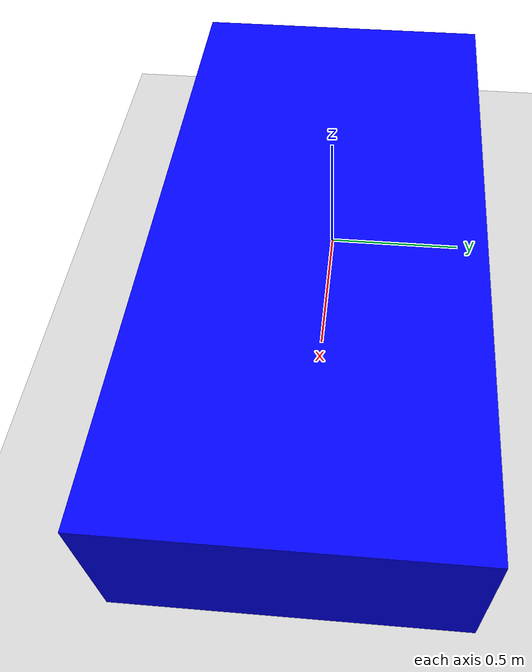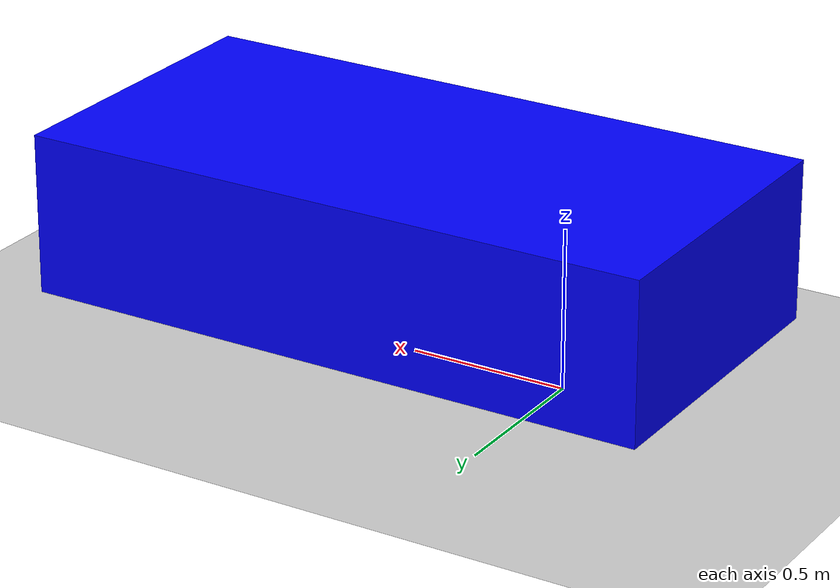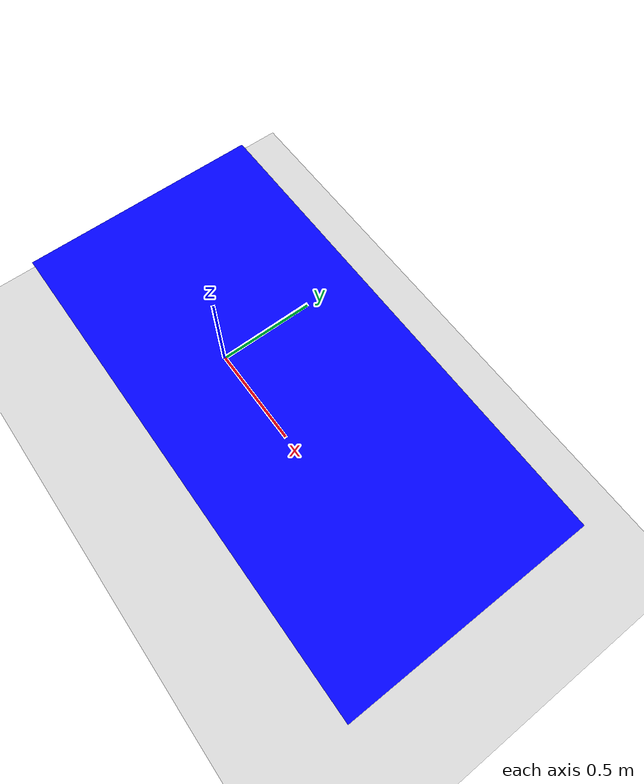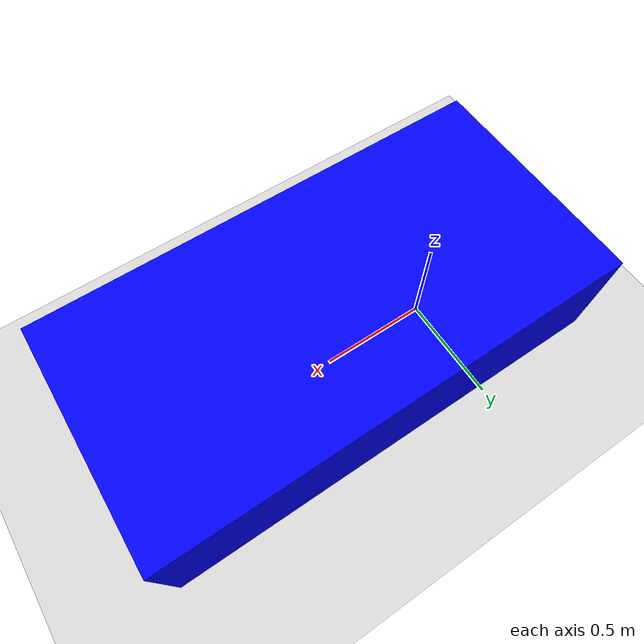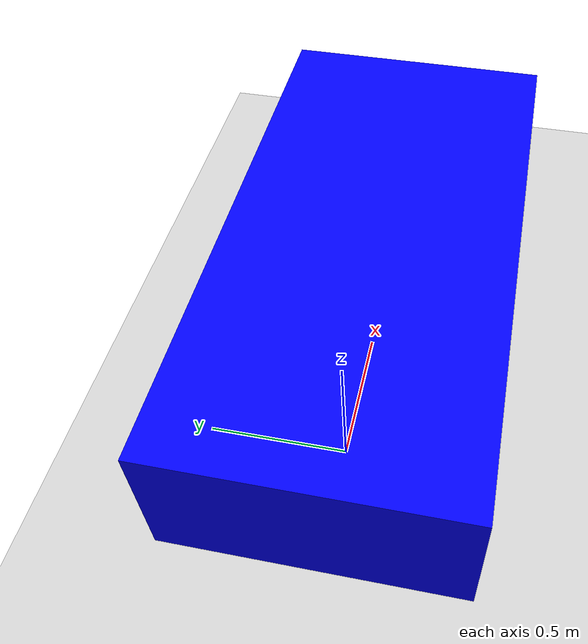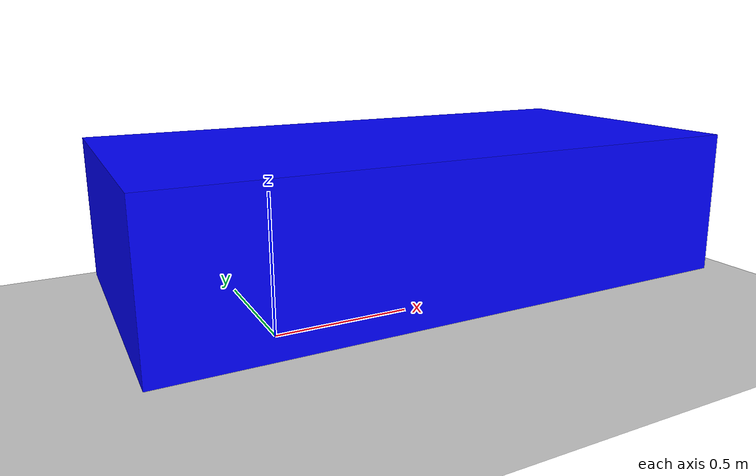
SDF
<?xml version="1.0" ?>
<!-- This is a simple rectangular model to test the buoyancy plugin -->
<sdf version="1.7">
    <world name="car_world">
        <physics name="1ms" type="ode">
            <max_step_size>0.0001</max_step_size>
            <real_time_factor>1.0</real_time_factor>
        </physics>
        <plugin
            filename="libignition-gazebo-physics-system.so"
            name="ignition::gazebo::systems::Physics">
        </plugin>
        <plugin
            filename="libignition-gazebo-user-commands-system.so"
            name="ignition::gazebo::systems::UserCommands">
        </plugin>
        <plugin
            filename="libignition-gazebo-scene-broadcaster-system.so"
            name="ignition::gazebo::systems::SceneBroadcaster">
        </plugin>

		<!--adding buoyancy-->
		<plugin
			filename="ignition-gazebo-buoyancy-system"
			name="ignition::gazebo::systems::Buoyancy">
			<uniform_fluid_density>1000</uniform_fluid_density>
		</plugin>

        <include>
            <uri>model://sea_bottom</uri>
            <pose>0 0 30 0 0 0</pose>
        </include>

        <gui fullscreen="0">

            <!-- 3D scene -->
            <plugin filename="GzScene3D" name="3D View">
                <ignition-gui>
                <title>3D View</title>
                <property type="bool" key="showTitleBar">false</property>
                <property type="string" key="state">docked</property>
                </ignition-gui>

                <engine>ogre2</engine>
                <scene>scene</scene>
                <ambient_light>0.4 0.4 0.4</ambient_light>
                <background_color>0.8 0.8 0.8</background_color>
            </plugin>

            <!-- World control -->
            <plugin filename="WorldControl" name="World control">
                <ignition-gui>
                <title>World control</title>
                <property type="bool" key="showTitleBar">false</property>
                <property type="bool" key="resizable">false</property>
                <property type="double" key="height">72</property>
                <property type="double" key="width">121</property>
                <property type="double" key="z">1</property>

                <property type="string" key="state">floating</property>
                <anchors target="3D View">
                    <line own="left" target="left"/>
                    <line own="bottom" target="bottom"/>
                </anchors>
                </ignition-gui>

                <play_pause>true</play_pause>
                <step>true</step>
                <start_paused>true</start_paused>
                <service>/world/car_world/control</service>
                <stats_topic>/world/car_world/stats</stats_topic>
            </plugin>

            <!-- World statistics -->
            <plugin filename="WorldStats" name="World stats">
                <ignition-gui>
                <title>World stats</title>
                <property type="bool" key="showTitleBar">false</property>
                <property type="bool" key="resizable">false</property>
                <property type="double" key="height">110</property>
                <property type="double" key="width">290</property>
                <property type="double" key="z">1</property>

                <property type="string" key="state">floating</property>
                <anchors target="3D View">
                    <line own="right" target="right"/>
                    <line own="bottom" target="bottom"/>
                </anchors>
                </ignition-gui>

                <sim_time>true</sim_time>
                <real_time>true</real_time>
                <real_time_factor>true</real_time_factor>
                <iterations>true</iterations>
                <topic>/world/car_world/stats</topic>

            </plugin>

            <!-- Entity tree -->
            <plugin filename="EntityTree" name="Entity tree">
            </plugin>

			<plugin filename="KeyPublisher" name="Key Publisher"/>

        </gui>

        <light type="directional" name="sun">
            <cast_shadows>true</cast_shadows>
            <pose>0 0 10 0 0 0</pose>
            <diffuse>0.8 0.8 0.8 1</diffuse>
            <specular>0.2 0.2 0.2 1</specular>
            <attenuation>
                <range>1000</range>
                <constant>0.9</constant>
                <linear>0.01</linear>
                <quadratic>0.001</quadratic>
            </attenuation>
            <direction>-0.5 0.1 -0.9</direction>
        </light>

        <model name="ground_plane">
            <static>true</static>
            <link name="link">
                <collision name="collision">
                <geometry>
                    <plane>
                    <normal>0 0 1</normal>
                    </plane>
                </geometry>
                </collision>
                <visual name="visual">
                <geometry>
                    <plane>
                    <normal>0 0 1</normal>
                    <size>300 300</size>
                    </plane>
                </geometry>
                <material>
                    <ambient>0.8 0.8 0.8 1</ambient>
                    <diffuse>0.8 0.8 0.8 1</diffuse>
                    <specular>0.8 0.8 0.8 1</specular>
                </material>
                </visual>
            </link>
        </model>
        <model name='vehicle_blue' canonical_link='chassis'>
    	    <pose relative_to='world'>0 0 0 0 0 0</pose>

    	    <link name="chassis">
                <pose relative_to='__model__'>0.5 0 0.4 0 0 0</pose>
                <inertial> <!--inertial properties of the link mass, inertia matix-->
					<mass>997</mass>
					<inertia>
						<ixx>0.095329</ixx>
						<ixy>0</ixy>
						<ixz>0</ixz>
						<iyy>0.381317</iyy>
						<iyz>0</iyz>
						<izz>0.476646</izz>
					</inertia>
				</inertial>
				<visual name='visual'>
					<geometry>
						<box>
							<size>2.0 1.0 0.5</size>
						</box>
					</geometry>
					<material>
							<ambient>0.0 0.0 1.0 1</ambient>
							<diffuse>0.0 0.0 1.0 1</diffuse>
							<specular>0.0 0.0 1.0 1</specular>
					</material>
				</visual>
				<collision name='collision'>
					<geometry>
						<box>
							<size>2.0 1.0 0.5</size>
						</box>
					</geometry>
				</collision>
			</link>

            <!-- crashes likely due to some error here. need to figure out how
            to get these values-->

            <plugin
                filename="ignition-gazebo-hydrodynamics-system"
                name="ignition::gazebo::systems::Hydrodynamics">
                <link_name>chassis</link_name>
                <xDotU>-4.876161</xDotU>
                <yDotV>-126.324739</yDotV>
                <zDotW>-126.324739</zDotW>
                <kDotP>0</kDotP>
                <mDotQ>-33.46</mDotQ>
                <nDotR>-33.46</nDotR>
                <xUU>-6.2282</xUU>
                <xU>0</xU>
                <yVV>-601.27</yVV>
                <yV>0</yV>
                <zWW>-601.27</zWW>
                <zW>0</zW>
                <kPP>-0.1916</kPP>
                <kP>0</kP>
                <mQQ>-632.698957</mQQ>
                <mQ>0</mQ>
                <nRR>-632.698957</nRR>
                <nR>0</nR>
            </plugin>

			<plugin
				filename="libignition-gazebo-diff-drive-system.so"
				name="ignition::gazebo::systems::DiffDrive">
				<left_joint>left_wheel_joint</left_joint>
				<right_joint>right_wheel_joint</right_joint>
				<wheel_separation>1.2</wheel_separation>
				<wheel_radius>0.4</wheel_radius>
				<odom_publish_frequency>1</odom_publish_frequency>
				<topic>cmd_vel</topic>
			</plugin>
        </model>

		<plugin filename="libignition-gazebo-triggered-publisher-system.so"
				name="ignition::gazebo::systems::TriggeredPublisher">
			<input type="ignition.msgs.Int32" topic="/keyboard/keypress">
				<match field="data">16777235</match>
			</input>
			<output type="ignition.msgs.Twist" topic="/cmd_vel">
				linear: {x: 5.5}, angular: {z: 0.0}
			</output>
		</plugin>

		<!-- moving backwards -->
		<plugin filename="libignition-gazebo-triggered-publisher-system.so"
				name="ignition::gazebo::systems::TriggeredPublisher">
			<input type="ignition.msgs.Int32" topic="/keyboard/keypress">
				<match field="data">16777237</match>
			</input>
			<output type="ignition.msgs.Twist" topic="/cmd_vel">
				linear: {x: -5.5}, angular: {z: 0.0}
			</output>
		</plugin>

		<plugin filename="libignition-gazebo-triggered-publisher-system.so"
				name="ignition::gazebo::systems::TriggeredPublisher">
			<input type="ignition.msgs.Int32" topic="/keyboard/keypress">
				<match field="data">16777234</match>
			</input>
			<output type="ignition.msgs.Twist" topic="/cmd_vel">
				linear: {x: 0.0}, angular: {z: 0.5}
			</output>
		</plugin>

    </world>
</sdf>

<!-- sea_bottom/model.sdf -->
<sdf version="1.5">
  <model name="sea_bottom">
    <static>true</static>
    <link name="sea_bottom">
      <collision name="collision">
        <pose>0 0 0 0 0 0</pose>
        <geometry>
          <box>
            <size>2000 2000 .1</size>
          </box>
        </geometry>
      </collision>

      <visual name="visual">
        <cast_shadows>false</cast_shadows>
        <pose>0 0 0 0 0 0</pose>
        <geometry>
          <box>
            <size>2000 2000 .1</size>
          </box>
        </geometry>
        <material>
          <script>
            <uri>file://Media/materials/scripts/sand.material</uri>
            <name>UUVSimulator/SandAndStones</name>
          </script>
          <emissive>
            0.2 0.2 0.2 1.0
          </emissive>
        </material>
      </visual>
    </link>
  </model>
</sdf>
